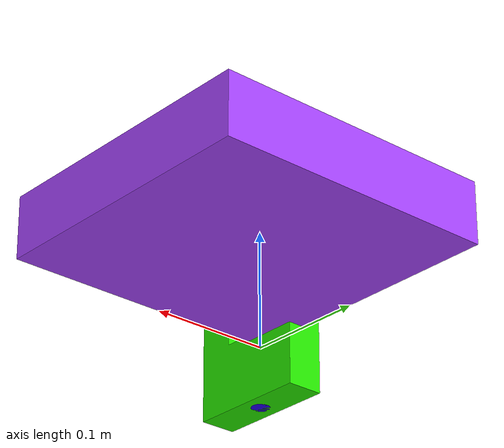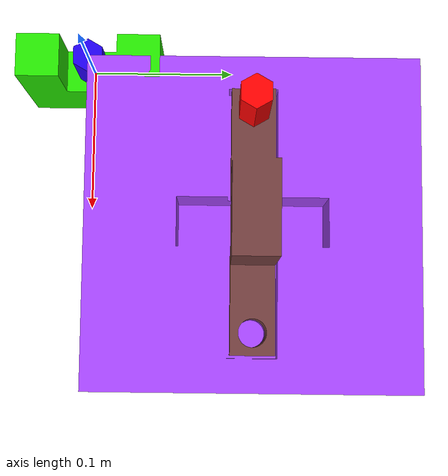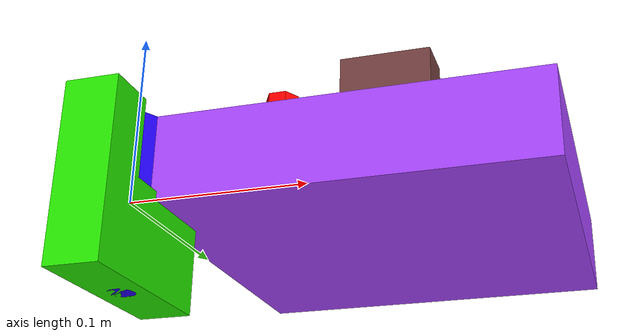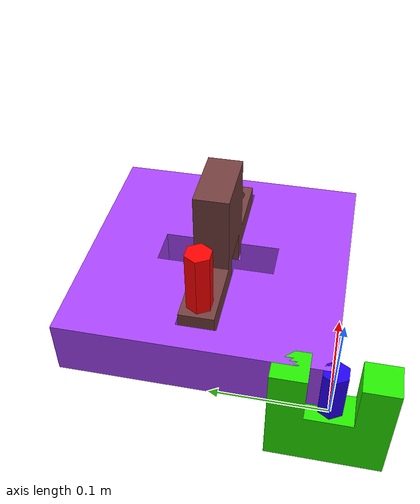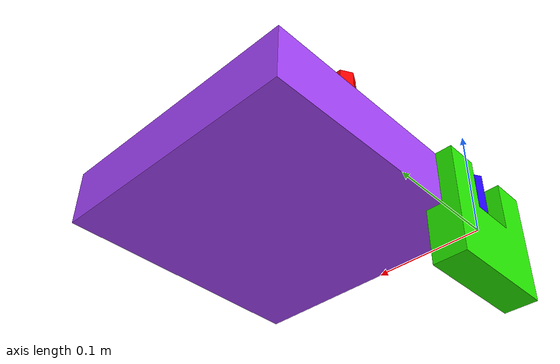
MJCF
<?xml version='1.0' encoding='utf-8'?>
<mujoco model="assembly2">
  <asset>
    <mesh name="obj1" file="meshes/assembly2/obj1.obj" scale="0.001 0.001 0.001" />
    <mesh name="obj2" file="meshes/assembly2/obj2.obj" scale="0.001 0.001 0.001" />
    <mesh name="obj3" file="meshes/assembly2/obj3.obj" scale="0.001 0.001 0.001" />
    <mesh name="obj4" file="meshes/assembly2/obj4.obj" scale="0.001 0.001 0.001" />
    <mesh name="obj5" file="meshes/assembly2/obj5.obj" scale="0.001 0.001 0.001" />
    <material name="mat1" rgba="0.65882 0.27059 1 1" />
    <material name="mat2" rgba="0.45098 0.24314 0.24314 1" />
    <material name="mat3" rgba="0.14902 0.92157 0 1" />
    <material name="mat4" rgba="1 0 0 1" />
    <material name="mat5" rgba="0.13725 0 0.94902 1" />
  </asset>
  <worldbody>
    <body>
      <body name="object">
        <geom name="obj1" mesh="obj1" type="mesh" contype="0" conaffinity="0" group="1" material="mat1" />
        <geom name="obj2" mesh="obj2" type="mesh" contype="0" conaffinity="0" group="1" material="mat2" />
        <geom name="obj3" mesh="obj3" type="mesh" contype="0" conaffinity="0" group="1" material="mat3" />
        <geom name="obj4" mesh="obj4" type="mesh" contype="0" conaffinity="0" group="1" material="mat4" />
        <geom name="obj5" mesh="obj5" type="mesh" contype="0" conaffinity="0" group="1" material="mat5" />
        <geom name="obj1" mesh="obj1" type="mesh" density="500" friction="1 0.005 0.0001" group="0" />
        <geom name="obj2" mesh="obj2" type="mesh" density="500" friction="1 0.005 0.0001" group="0" />
        <geom name="obj3" mesh="obj3" type="mesh" density="500" friction="1 0.005 0.0001" group="0" />
        <geom name="obj4" mesh="obj4" type="mesh" density="500" friction="1 0.005 0.0001" group="0" />
        <geom name="obj5" mesh="obj5" type="mesh" density="500" friction="1 0.005 0.0001" group="0" />
        <site name="bottom_site" pos="0 0 -0.025" size="0.005" rgba="0 0 0 0" />
        <site name="top_site" pos="0 0 0.025" size="0.005" rgba="0 0 0 0" />
        <site name="horizontal_radius_site" pos="0.03 0.03 0" size="0.005" rgba="0 0 0 0" />
      </body>
    </body>
  </worldbody>
</mujoco>
